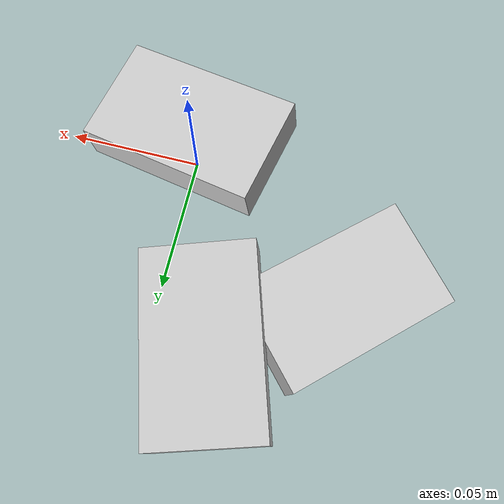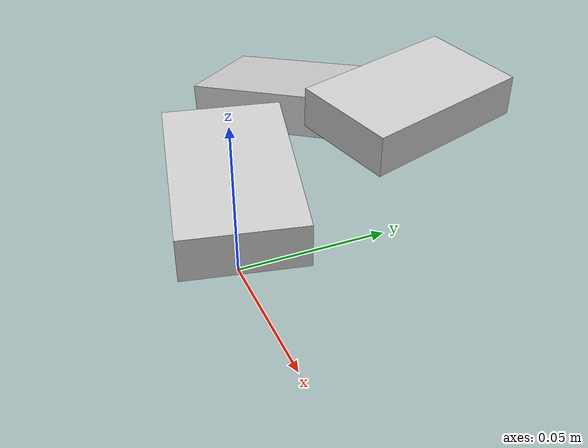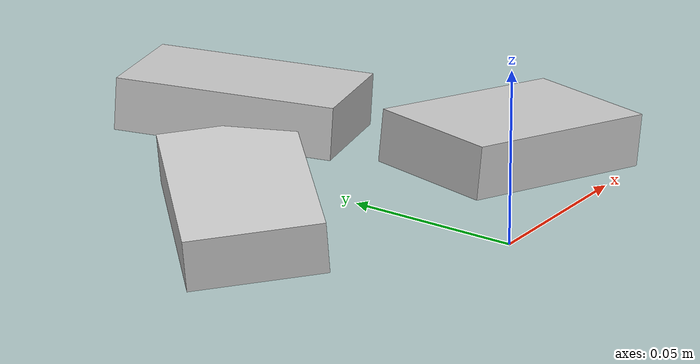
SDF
<sdf version='1.7'>
  <world name='empty'>
    <physics name='1ms' type='ignored'>
      <max_step_size>0.001</max_step_size>
      <real_time_factor>1</real_time_factor>
      <real_time_update_rate>1000</real_time_update_rate>
    </physics>
    <plugin name='ignition::gazebo::systems::Physics' filename='ignition-gazebo-physics-system'/>
    <plugin name='ignition::gazebo::systems::UserCommands' filename='ignition-gazebo-user-commands-system'/>
    <plugin name='ignition::gazebo::systems::SceneBroadcaster' filename='ignition-gazebo-scene-broadcaster-system'/>
    <plugin name='ignition::gazebo::systems::Contact' filename='ignition-gazebo-contact-system'/>
    <light name='sun' type='directional'>
      <cast_shadows>1</cast_shadows>
      <pose>0 0 10 0 -0 0</pose>
      <diffuse>0.8 0.8 0.8 1</diffuse>
      <specular>0.2 0.2 0.2 1</specular>
      <attenuation>
        <range>1000</range>
        <constant>0.9</constant>
        <linear>0.01</linear>
        <quadratic>0.001</quadratic>
      </attenuation>
      <direction>-0.5 0.1 -0.9</direction>
      <spot>
        <inner_angle>0</inner_angle>
        <outer_angle>0</outer_angle>
        <falloff>0</falloff>
      </spot>
    </light>
    <gravity>0 0 -9.8</gravity>
    <magnetic_field>6e-06 2.3e-05 -4.2e-05</magnetic_field>
    <atmosphere type='adiabatic'/>
    <scene>
      <ambient>0.4 0.4 0.4 1</ambient>
      <background>0.7 0.7 0.7 1</background>
      <shadows>1</shadows>
    </scene>
    <model name='tictac_white'>
      <pose>-0.023547 0.07059 0.033396 1.87414 -1.46941 0</pose>
      <static>1</static>
      <link name='link'>
        <inertial>
          <mass>1</mass>
          <inertia>
            <ixx>6.26903e-05</ixx>
            <ixy>0</ixy>
            <ixz>0</ixz>
            <iyy>4.85733e-05</iyy>
            <iyz>0</iyz>
            <izz>1.88348e-05</izz>
          </inertia>
        </inertial>
        <collision name='collision'>
          <geometry>
            <box>
              <size>0.014 0.037 0.062</size>
            </box>
          </geometry>
          <surface>
            <friction>
              <ode/>
            </friction>
            <bounce/>
            <contact/>
          </surface>
        </collision>
        <visual name='visual'>
          <pose>0 0 0 0 -0 1.5708</pose>
          <geometry>
            <mesh>
              <scale>0.5 0.5 0.5</scale>
              <uri>model://tictac_white/meshes/tictac_white.dae</uri>
            </mesh>
          </geometry>
        </visual>
      </link>
    </model>
    <model name='tictac_orange'>
      <pose>-0.062131 0.043755 0.023474 -2.39107 -1.45026 3.14159</pose>
      <static>1</static>
      <link name='link'>
        <inertial>
          <mass>1</mass>
          <inertia>
            <ixx>6.26903e-05</ixx>
            <ixy>0</ixy>
            <ixz>0</ixz>
            <iyy>4.85733e-05</iyy>
            <iyz>0</iyz>
            <izz>1.88348e-05</izz>
          </inertia>
        </inertial>
        <collision name='collision'>
          <geometry>
            <box>
              <size>0.014 0.037 0.062</size>
            </box>
          </geometry>
          <surface>
            <friction>
              <ode/>
            </friction>
            <bounce/>
            <contact/>
          </surface>
        </collision>
        <visual name='visual'>
          <pose>0 0 0 0 -0 1.5708</pose>
          <geometry>
            <mesh>
              <scale>0.5 0.5 0.5</scale>
              <uri>model://tictac_orange/meshes/tictac_orange.dae</uri>
            </mesh>
          </geometry>
        </visual>
      </link>
    </model>
    <model name='tictac_green'>
      <pose>0 0 0.031 -0 -1.45189 -0.216207</pose>
      <static>1</static>
      <link name='link'>
        <inertial>
          <mass>1</mass>
          <inertia>
            <ixx>6.26903e-05</ixx>
            <ixy>0</ixy>
            <ixz>0</ixz>
            <iyy>4.85733e-05</iyy>
            <iyz>0</iyz>
            <izz>1.88348e-05</izz>
          </inertia>
        </inertial>
        <collision name='collision'>
          <geometry>
            <box>
              <size>0.014 0.037 0.062</size>
            </box>
          </geometry>
          <surface>
            <friction>
              <ode/>
            </friction>
            <bounce/>
            <contact/>
          </surface>
        </collision>
        <visual name='visual'>
          <pose>0 0 0 0 -0 1.5708</pose>
          <geometry>
            <mesh>
              <scale>0.5 0.5 0.5</scale>
              <uri>model://tictac_green/meshes/tictac_green.dae</uri>
            </mesh>
          </geometry>
        </visual>
      </link>
    </model>
  </world>
</sdf>
